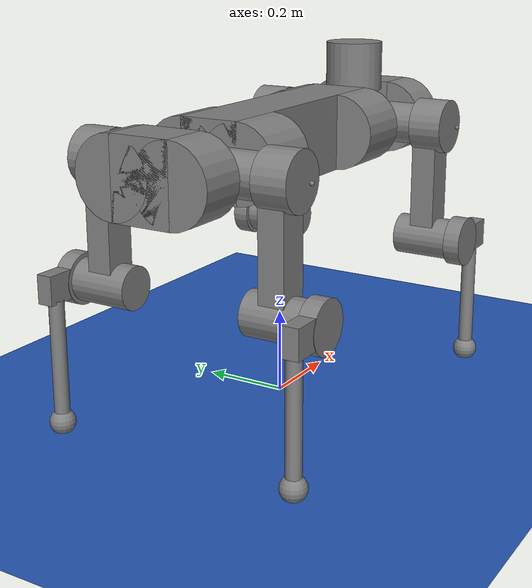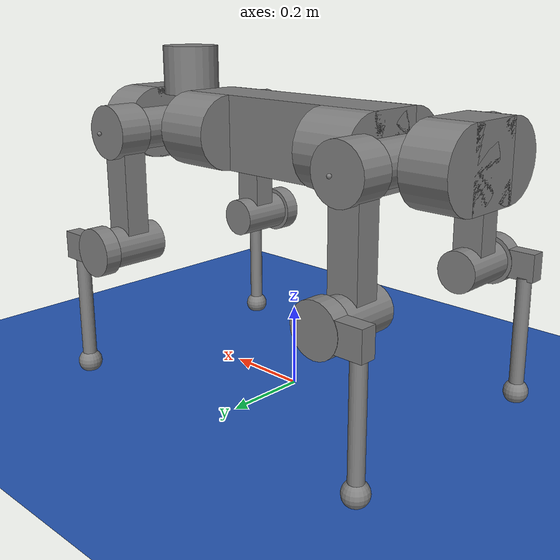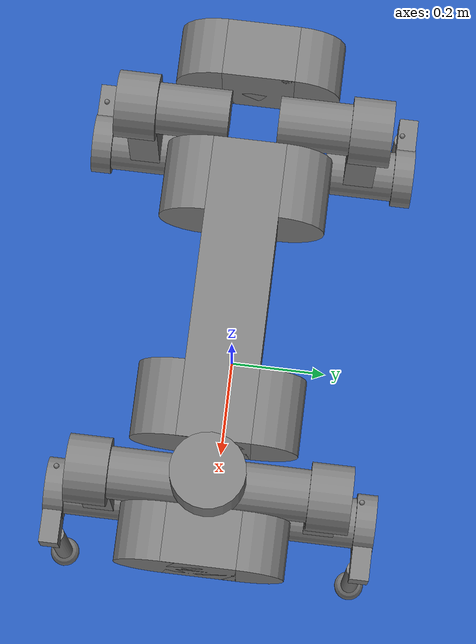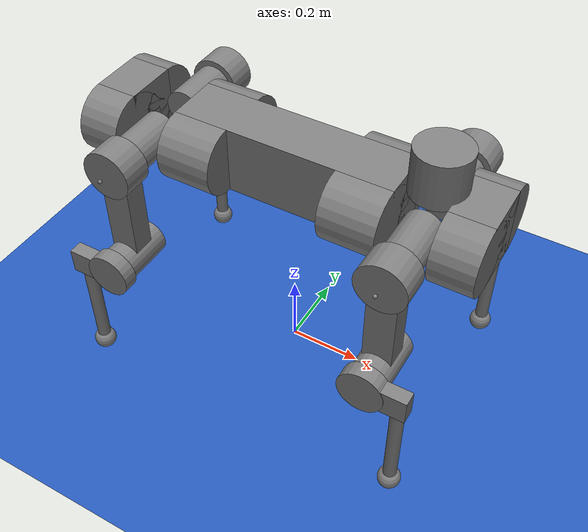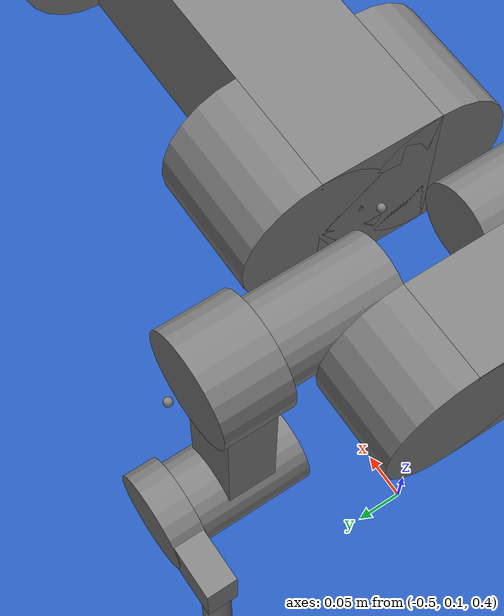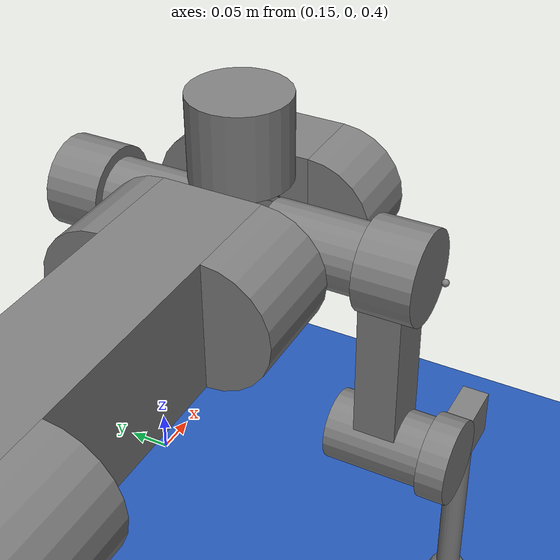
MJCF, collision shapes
<mujoco model="anymal_c scene">
  <include file="../../object/common.xml"/>

  <visual>
    <headlight diffuse="0.6 0.6 0.6"  ambient="0.3 0.3 0.3" specular="0 0 0"/>
    <global azimuth="-90"/>
  </visual>

  <statistic extent="1" center="0 0 .3"/>

  <worldbody>
    <light pos="0 0 1.5" dir="0 0 -1" diffuse="0.5 0.5 0.5" specular="0.3 0.3 0.3"
      directional="true" castshadow="false"/>
    <geom name="floor" size="0 0 0.1" pos="0 0 0" type="plane" material="blue_grid"/>
  </worldbody>

  <default>
    <default class="torque">
      <general gainprm="40" ctrllimited="true" ctrlrange="-800 800"/>
    </default>
    <default class="task">
      <site rgba="1 0 0 1" size=".02" group="5"/>
      <default class="flight">
        <site rgba="1 .3 .3 1" size="0.019" group="5"/>
      </default>
      <default class="stance">
        <site rgba=".3 1 .3 1" size=".018" group="4"/>
      </default>
    </default>
    <default class="prop">
      <geom type="box" rgba="0 0.4 1 1"/>
    </default>
  </default>

  <include file="AC_Motion.xml"/>

  <actuator>
    <general class="torque" name="FR_hip" joint="FR_hip_joint"/>
    <general class="torque" name="FR_thigh" joint="FR_thigh_joint"/>
    <general class="torque" name="FR_calf" joint="FR_calf_joint"/>
    <general class="torque" name="FL_hip" joint="FL_hip_joint"/>
    <general class="torque" name="FL_thigh" joint="FL_thigh_joint"/>
    <general class="torque" name="FL_calf" joint="FL_calf_joint"/>
    <general class="torque" name="RR_hip" joint="RR_hip_joint"/>
    <general class="torque" name="RR_thigh" joint="RR_thigh_joint"/>
    <general class="torque" name="RR_calf" joint="RR_calf_joint"/>
    <general class="torque" name="RL_hip" joint="RL_hip_joint"/>
    <general class="torque" name="RL_thigh" joint="RL_thigh_joint"/>
    <general class="torque" name="RL_calf" joint="RL_calf_joint"/>
  </actuator>

  <sensor>
    <user name="Qpos" dim="12" user="0 0 0 0 0 0 0 0 0 0 0 0" />
    <user name="FootHeight" dim="4" user="0 0 0 0" />
    <user name="Height" dim="1" user="0" />
    <user name="Position" dim="3" user="0 0 0" />
    <user name="Heading" dim="2" />
    <user name="YPR" dim="3" user="0 0 0" />
    <user name="Balance" dim="2"/>
    <user name="Effort" dim="12"/>
    <subtreecom    name="torso_subtreecom" body="trunk"/>
    <subtreelinvel name="torso_subtreelinvel" body="trunk"/>
  </sensor>

  <keyframe>

    <!-- SOTA -->

    <!-- Higher -->
    <key name="home"
         qpos="0 0 0.56
               1 0 0 0
               -0.0  0.5 -0.7
                0.0  0.5 -0.7
               -0.0 -0.5  0.7
                0.0 -0.5  0.7"/>

    <!-- Lower -->

  </keyframe>

</mujoco>

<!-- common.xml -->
<mujoco>

  <visual>
    <headlight ambient=".4 .4 .4" diffuse=".8 .8 .8" specular="0.1 0.1 0.1"/>
    <map znear=".01"/>
    <quality shadowsize="2048"/>
    <global elevation="-15"/>
  </visual>

  <asset>
    <texture name="blue_grid" type="2d" builtin="checker" rgb1=".02 .14 .44" rgb2=".27 .55 1" width="300" height="300" mark="edge" markrgb="1 1 1"/>
    <material name="blue_grid" texture="blue_grid" texrepeat="1 1" texuniform="true" reflectance=".2"/>

    <texture name="grey_grid" type="2d" builtin="checker" rgb1=".26 .26 .26" rgb2=".6 .6 .6" width="300" height="300" mark="edge" markrgb="1 1 1"/>
    <material name="grey_grid" texture="blue_grid" texrepeat="1 1" texuniform="true" reflectance=".2"/>
    <texture name="skybox" type="skybox" builtin="gradient" rgb1="1 1 1" rgb2="1 1 1" width="800" height="800"/>

    <material name="self" rgba=".7 .5 .3 1"/>
    <material name="self_default" rgba=".7 .5 .3 1"/>
    <material name="self_highlight" rgba="0 .5 .3 1"/>
    <material name="effector" rgba=".7 .4 .2 1"/>
    <material name="effector_default" rgba=".7 .4 .2 1"/>
    <material name="effector_highlight" rgba="0 .5 .3 1"/>
    <material name="decoration" rgba=".2 .6 .3 1"/>
    <material name="eye" rgba="0 .2 1 1"/>
    <material name="target" rgba=".6 .3 .3 1"/>
    <material name="target_default" rgba=".6 .3 .3 1"/>
    <material name="target_highlight" rgba=".6 .3 .3 .4"/>
    <material name="site" rgba=".5 .5 .5 .3"/>
  </asset>
</mujoco>

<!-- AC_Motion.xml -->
<mujoco model="anymal_c">
  <compiler angle="radian" meshdir="assets" texturedir="assets" autolimits="true"/>

  <option cone="elliptic" impratio="10"/>

  <default>
    <material specular="0" shininess="0.25"/>
    <default class="anymal_c">
      <joint damping="1" frictionloss="0.1"/>

      <default class="visual">
        <geom type="mesh" contype="0" conaffinity="0" group="2"/>
        <default class="visual_zflip">
          <geom quat="0 0 0 1"/>
        </default>
      </default>
      <default class="collision">
        <geom group="3" type="cylinder"/>
        <default class="foot">
          <geom type="sphere" size="0.03" pos="0 0 0.02325" priority="1" solimp="0.015 1 0.031" condim="6"
            friction="0.8 0.02 0.01"/>
        </default>
      </default>

      <default class="affine">
        <position kp="100" ctrlrange="-6.28 6.28" forcerange="-80 80"/>
      </default>
    </default>
  </default>

  <asset>
    <material name="base" texture="base"/>
    <material name="blank" texture="blank"/>
    <material name="lidar" texture="lidar"/>

    <texture type="2d" name="base" file="base.png"/>
    <texture type="2d" name="lidar" file="lidar.png"/>

    <texture type="2d" name="blank" file="blank.png"/>

    <mesh file="base_5.obj"/>
    <mesh file="lidar.obj"/>
    <mesh file="hip_l.obj"/>
    <mesh file="thigh.obj"/>
    <mesh file="shank_l.obj"/>
    <mesh file="foot.obj"/>
    <mesh file="hip_r.obj"/>
    <mesh file="shank_r.obj"/>
  </asset>

  <worldbody>
    <body name="trunk" pos="0 0 0.62" quat="0 0 0 1" childclass="anymal_c">
      <site name="trunk_site"/>
      <site name="head" pos="0.3 0 0"/>
      <freejoint name="trunk"/>
      <inertial mass="19.2035" pos="0.0025 0 0.0502071" quat="0.5 0.5 0.5 0.5" diaginertia="0.639559 0.624031 0.217374"/>
      <geom mesh="base_5" material="base" class="visual"/>
      <geom class="collision" size="0.29 0.07 0.09" type="box"/>
      <geom class="collision" size="0.09 0.0725" pos="0.2175 0.07 0" quat="1 0 1 0"/>
      <geom class="collision" size="0.09 0.0725" pos="-0.2175 0.07 0" quat="1 0 1 0"/>
      <geom class="collision" size="0.09 0.0725" pos="0.2175 -0.07 0" quat="1 0 1 0"/>
      <geom class="collision" size="0.09 0.0725" pos="-0.2175 -0.07 0" quat="1 0 1 0"/>
      <geom class="collision" size="0.055 0.07 0.09" pos="0.4695 0 0" type="box"/>
      <geom class="collision" size="0.09 0.055" pos="0.4695 0.07 0" quat="1 0 1 0"/>
      <geom class="collision" size="0.09 0.055" pos="0.4695 -0.07 0" quat="1 0 1 0"/>
      <geom class="collision" size="0.055 0.07 0.09" pos="-0.4695 0 0" quat="0 0 0 1" type="box"/>
      <geom class="collision" size="0.09 0.055" pos="-0.4695 -0.07 0" quat="0 -1 0 1"/>
      <geom class="collision" size="0.09 0.055" pos="-0.4695 0.07 0" quat="0 -1 0 1"/>
      <geom class="collision" size="0.07 0.06" pos="-0.364 0 0.1335"/>
      <geom pos="-0.364 0 0.1422" quat="1 0 0 -1" material="lidar" mesh="lidar" class="visual"/>
      <body name="FR_hip" pos="0.2999 -0.104 0" quat="0.258819 -0.965926 0 0">
        <site name="FR_hip_site" pos="0.0599 0 0"/>
        <inertial mass="2.781" pos="0.0567633 0.015294 -0.00829784" quat="0.13524 0.679072 0.127985 0.710065"
          diaginertia="0.00585928 0.0049205 0.00329064"/>
        <joint name="FR_hip_joint" axis="1 0 0" range="-0.49 0.72"/>
        <geom quat="0.258819 0.965926 0 0" mesh="hip_r" class="visual"/>
        <geom class="collision" size="0.05 0.07" pos="0.0599 0.0119598 -0.006905"
          quat="-0.353553 0.612372 0.612372 0.353553"/>
        <body name="FR_thigh" pos="0.0599 0.0725816 -0.041905" quat="0.183013 0.683013 0.683013 -0.183013">
          <site name="FR_thigh_site" pos="0.1003 0 0 "/>
          <inertial mass="3.071" pos="0.0308147 4.64995e-05 -0.245696" quat="0.992775 -0.00512735 -0.0806685 0.0886811"
            diaginertia="0.0302511 0.0298933 0.0041845"/>
          <joint name="FR_thigh_joint" axis="-1 0 0" range="-9.42478 9.42478"/>
          <geom quat="1 0 0 -1" mesh="thigh" class="visual"/>
          <geom class="collision" size="0.065 0.04" pos="0.04 0 0" quat="0.5 0.5 0.5 0.5"/>
          <geom class="collision" size="0.0375 0.03 0.141314" pos="0.03 0 -0.141314" quat="1 0 0 1" type="box"/>
          <geom class="collision" size="0.05 0.07" pos="0.0303 0 -0.285" quat="1 0 1 0"/>
          <body name="FR_calf" pos="0.1003 0 -0.285">
            <site name="FR_calf_site"/>
            <inertial mass="0.58842" pos="0.005462 0.0612528 -0.0806598" quat="0.992934 0.115904 -0.00105487 0.0254421"
              diaginertia="0.0101637 0.00923838 0.00111927"/>
            <joint name="FR_calf_joint" axis="-1 0 0" range="-9.42478 9.42478"/>
            <geom quat="1 0 0 1" mesh="shank_r" class="visual"/>
            <geom class="collision" size="0.06 0.02" pos="0.02 0 0" quat="0.5 0.5 0.5 0.5"/>
            <geom class="collision" size="0.057499 0.03375 0.019" pos="0.02 0.057499 0" quat="0.5 0.5 0.5 0.5"
              type="box"/>
            <geom name="FR_foot_vis" pos="0.01305 0.08795 -0.33797" quat="0.382683 0 0 0.92388" mesh="foot" class="visual"/>
            <geom name="FR_foot_collision" class="collision" size="0.0175 0.141252" pos="0.01305 0.08795 -0.168985" quat="1 0 0 1"/>
            <geom name="FR_foot" class="foot" pos="0.01305 0.08795 -0.31547" quat="1 0 0 1"/>
            <site name="FR_foot_site" pos="0 0.08795 -0.31547" type="sphere" size=".015"/>
          </body>
        </body>
      </body>
      <body name="FL_hip" pos="0.2999 0.104 0" quat="0.258819 0.965926 0 0">
        <site name="FL_hip_site" pos="0.1 0 0"/>
        <inertial mass="2.781" pos="0.0566606 -0.015294 -0.00829784" quat="-0.127978 0.709783 -0.135278 0.679359"
          diaginertia="0.00585729 0.00491868 0.00329081"/>
        <joint name="FL_hip_joint" axis="1 0 0" range="-0.72 0.49"/>
        <geom quat="0.258819 -0.965926 0 0" mesh="hip_l" class="visual"/>
        <geom class="collision" size="0.05 0.07" pos="0.0599 -0.0119598 -0.006905"
          quat="-0.353553 -0.612372 0.612372 -0.353553"/>
        <body name="FL_thigh" pos="0.0599 -0.0725816 -0.041905" quat="0.183013 -0.683013 0.683013 0.183013">
          <site name="FL_thigh_site" pos="0.1003 0 0"/>
          <inertial mass="3.071" pos="0.0308147 4.64995e-05 -0.245696" quat="0.993166 -0.00515309 -0.0806592 0.0841972"
            diaginertia="0.03025 0.0298943 0.00418465"/>
          <joint name="FL_thigh_joint" axis="1 0 0" range="-9.42478 9.42478"/>
          <geom quat="1 0 0 -1" mesh="thigh" class="visual"/>
          <geom class="collision" size="0.065 0.04" pos="0.04 0 0" quat="0.5 0.5 -0.5 -0.5"/>
          <geom class="collision" size="0.0375 0.03 0.141314" pos="0.03 0 -0.141314" quat="1 0 0 -1" type="box"/>
          <geom class="collision" size="0.05 0.07" pos="0.0303 0 -0.285" quat="1 0 1 0"/>
          <body name="FL_calf" pos="0.1003 0 -0.285">
            <site name="FL_calf_site"/>
            <inertial mass="0.58842" pos="0.005462 -0.0612528 -0.0806598"
              quat="0.992934 -0.115904 -0.00105487 -0.0254421" diaginertia="0.0101637 0.00923838 0.00111927"/>
            <joint name="FL_calf_joint" axis="1 0 0" range="-9.42478 9.42478"/>
            <geom quat="1 0 0 -1" mesh="shank_l" class="visual"/>
            <geom class="collision" size="0.06 0.02" pos="0.02 0 0" quat="0.5 0.5 -0.5 -0.5"/>
            <geom class="collision" size="0.057499 0.03375 0.019" pos="0.02 -0.057499 0" quat="0.5 0.5 -0.5 -0.5"
              type="box"/>
            <geom name="FL_foot_vis" pos="0.01305 -0.08795 -0.33797" quat="0.382683 0 0 -0.92388" mesh="foot"
              class="visual"/>
            <geom name="FL_foot_collision" class="collision" size="0.0175 0.141252" pos="0.01305 -0.08795 -0.168985" quat="1 0 0 -1"/>
            <geom name="FL_foot" class="foot" pos="0.01305 -0.08795 -0.31547" quat="1 0 0 -1"/>
            <site name="FL_foot_site" pos="0 -0.08795 -0.31547" type="sphere" size=".015"/>
          </body>
        </body>
      </body>

      <body name="RR_hip" pos="-0.2999 -0.104 0" quat="0 0 -0.965926 -0.258819">
        <site name="RR_hip_site" pos="0.0599 0 0"/>
        <inertial mass="2.781" pos="0.0566606 -0.015294 -0.00829784" quat="-0.127978 0.709783 -0.135278 0.679359"
          diaginertia="0.00585729 0.00491868 0.00329081"/>
        <joint name="RR_hip_joint" axis="-1 0 0" range="-0.49 0.72"/>
        <geom quat="-0.258819 0.965926 0 0" mesh="hip_l" class="visual"/>
        <geom class="collision" size="0.05 0.07" pos="0.0599 -0.0119598 -0.006905"
          quat="0.353553 0.612372 -0.612372 0.353553"/>
        <body name="RR_thigh" pos="0.0599 -0.0725816 -0.041905" quat="-0.183013 0.683013 -0.683013 -0.183013">
          <site name="RR_thigh_site" pos="0.1003 0 0 "/>
          <inertial mass="3.071" pos="0.0308147 4.64995e-05 -0.245696" quat="0.993166 -0.00515309 -0.0806592 0.0841972"
            diaginertia="0.03025 0.0298943 0.00418465"/>
          <joint name="RR_thigh_joint" axis="-1 0 0" range="-9.42478 9.42478"/>
          <geom quat="1 0 0 -1" mesh="thigh" class="visual"/>
          <geom class="collision" size="0.065 0.04" pos="0.04 0 0" quat="0.5 0.5 0.5 0.5"/>
          <geom class="collision" size="0.0375 0.03 0.141314" pos="0.03 0 -0.141314" quat="1 0 0 1" type="box"/>
          <geom class="collision" size="0.05 0.07" pos="0.0303 0 -0.285" quat="1 0 1 0"/>
          <body name="RR_calf" pos="0.1003 0 -0.285">
            <site name="RR_calf_site"/>
            <inertial mass="0.58842" pos="0.005462 -0.0612528 -0.0806598"
              quat="0.992934 -0.115904 -0.00105487 -0.0254421" diaginertia="0.0101637 0.00923838 0.00111927"/>
            <joint name="RR_calf_joint" axis="-1 0 0" range="-9.42478 9.42478"/>
            <geom quat="1 0 0 -1" mesh="shank_l" class="visual"/>
            <geom class="collision" size="0.06 0.02" pos="0.02 0 0" quat="0.5 0.5 0.5 0.5"/>
            <geom class="collision" size="0.057499 0.03375 0.019" pos="0.02 -0.057499 0" quat="0.5 0.5 0.5 0.5"
              type="box"/>
            <geom name="RR_foot_vis" pos="0.01305 -0.08795 -0.33797" quat="0.382683 0 0 -0.92388" mesh="foot"
              class="visual"/>
            <geom name="RR_foot_collision" class="collision" size="0.0175 0.141252" pos="0.01305 -0.08795 -0.168985" quat="1 0 0 1"/>
            <geom name="RR_foot" class="foot" pos="0.01305 -0.08795 -0.31547" quat="1 0 0 1"/>
            <site name="RR_foot_site" pos="0 -0.08795 -0.31547" type="sphere" size=".015"/>
          </body>
        </body>
      </body>
      <body name="RL_hip" pos="-0.2999 0.104 0" quat="0 0 0.965926 -0.258819">
        <site name="RL_hip_site" pos="0.0599 0 0"/>
        <inertial mass="2.781" pos="0.0567633 0.015294 -0.00829784" quat="0.13524 0.679072 0.127985 0.710065"
          diaginertia="0.00585928 0.0049205 0.00329064"/>
        <joint name="RL_hip_joint" axis="-1 0 0" range="-0.72 0.49"/>
        <geom quat="-0.258819 -0.965926 0 0" mesh="hip_r" class="visual"/>
        <geom class="collision" size="0.05 0.07" pos="0.0599 0.0119598 -0.006905"
          quat="-0.353553 0.612372 0.612372 0.353553"/>
        <body name="RL_thigh" pos="0.0599 0.0725816 -0.041905" quat="0.183013 0.683013 0.683013 -0.183013">
          <site name="RL_thigh_site" pos="0.1003 0 0 "/>
          <inertial mass="3.071" pos="0.0308147 4.64995e-05 -0.245696" quat="0.992775 -0.00512735 -0.0806685 0.0886811"
            diaginertia="0.0302511 0.0298933 0.0041845"/>
          <joint name="RL_thigh_joint" axis="1 0 0" range="-9.42478 9.42478"/>
          <geom quat="1 0 0 -1" mesh="thigh" class="visual"/>
          <geom class="collision" size="0.065 0.04" pos="0.04 0 0" quat="0.5 0.5 -0.5 -0.5"/>
          <geom class="collision" size="0.0375 0.03 0.141314" pos="0.03 0 -0.141314" quat="1 0 0 -1" type="box"/>
          <geom class="collision" size="0.05 0.07" pos="0.0303 0 -0.285" quat="1 0 1 0"/>
          <body name="RL_calf" pos="0.1003 0 -0.285">
            <site name="RL_calf_site"/>
            <inertial mass="0.58842" pos="0.005462 0.0612528 -0.0806598" quat="0.992934 0.115904 -0.00105487 0.0254421"
              diaginertia="0.0101637 0.00923838 0.00111927"/>
            <joint name="RL_calf_joint" axis="1 0 0" range="-9.42478 9.42478"/>
            <geom quat="-1 0 0 -1" mesh="shank_r" class="visual"/>
            <geom class="collision" size="0.06 0.02" pos="0.02 0 0" quat="0.5 0.5 -0.5 -0.5"/>
            <geom class="collision" size="0.057499 0.03375 0.019" pos="0.02 0.057499 0" quat="0.5 0.5 -0.5 -0.5"
              type="box"/>
            <geom name="RL_foot_vis" pos="0.01305 0.08795 -0.33797" quat="-0.382683 0 0 -0.92388" mesh="foot"
              class="visual"/>
            <geom name="RL_foot_collision" class="collision" size="0.0175 0.141252" pos="0.01305 0.08795 -0.168985" quat="1 0 0 -1"/>
            <geom name="RL_foot" class="foot" pos="0.01305 0.08795 -0.31547" quat="1 0 0 -1"/>
            <site name="RL_foot_site" pos="0 0.08795 -0.31547" type="sphere" size=".015"/>
          </body>
        </body>
      </body>
    </body>
  </worldbody>

  <contact>
    <exclude body1="trunk" body2="FL_thigh"/>
    <exclude body1="trunk" body2="FR_thigh"/>
    <exclude body1="trunk" body2="RL_thigh"/>
    <exclude body1="trunk" body2="RR_thigh"/>
  </contact>
</mujoco>
